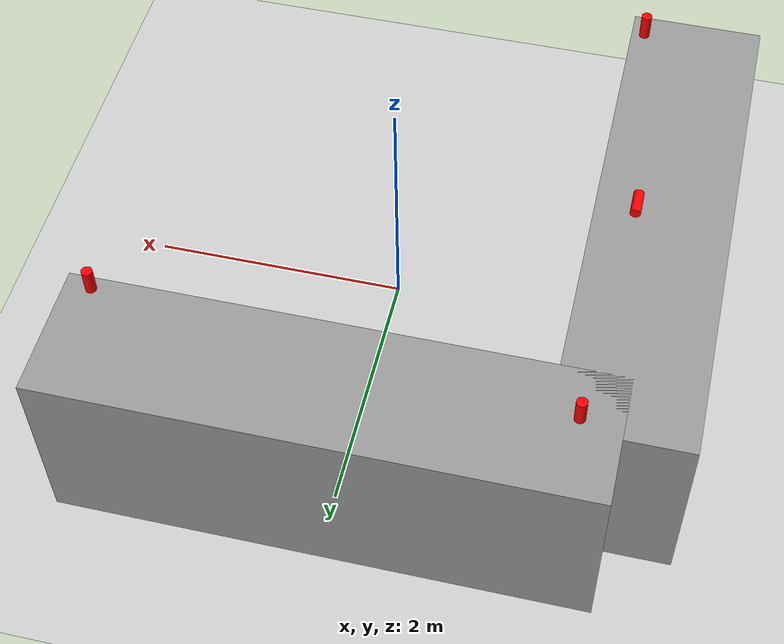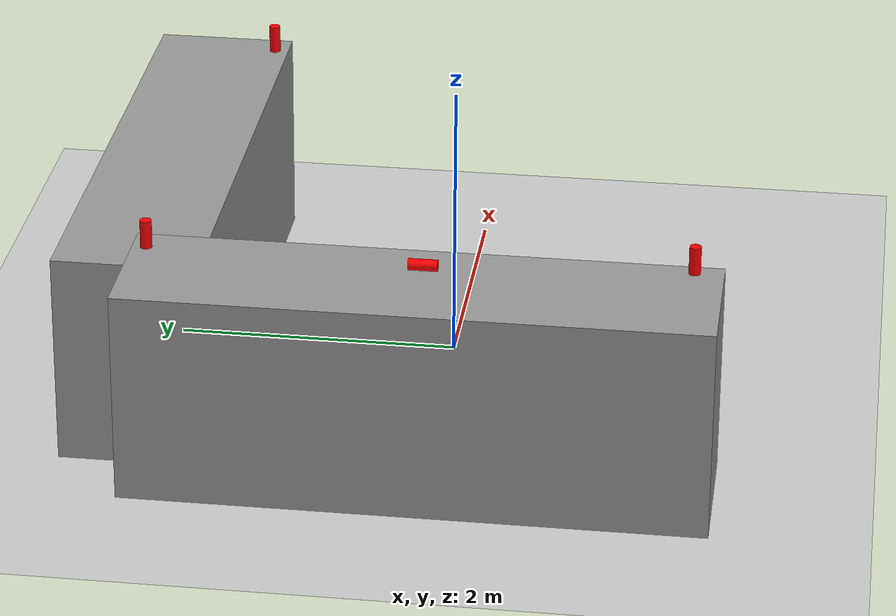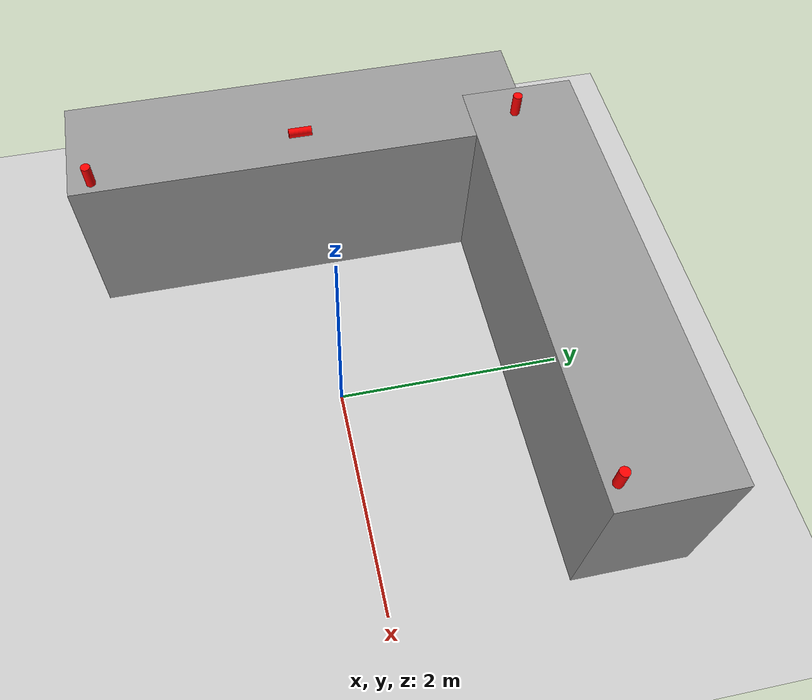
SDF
<?xml version="1.0" ?>
<sdf version="1.5">
  <world name="default">
    <!-- A global light source -->
    <include>
      <uri>model://sun</uri>
    </include>
    <!-- A ground plane -->
    <include>
      <uri>model://ground_plane</uri>
    </include>
    <include>
      <uri>model://asphalt_plane</uri>
      <pose frame=''>0 0 -0.055 0 0 0</pose>
    </include>

<!-- Shelf 1 with two objects: one top graspable, other side graspable -->
   <model name='unit_box'>
    <static>1</static>
      <pose frame=''>-2.0 0.0 0.75 0 0 0</pose>
      <link name='link'>
        <inertial>
          <mass>1</mass>
          <inertia>
            <ixx>0.166667</ixx>
            <ixy>0</ixy>
            <ixz>0</ixz>
            <iyy>0.166667</iyy>
            <iyz>0</iyz>
            <izz>0.166667</izz>
          </inertia>
          <pose frame=''>0 0 0 0 0 0</pose>
        </inertial>
        <collision name='collision'>
          <geometry>
            <box>
              <size>1 4 1.5</size>
            </box>
          </geometry>
          <max_contacts>10</max_contacts>
          <surface>
            <contact>
              <ode/>
            </contact>
            <bounce/>
            <friction>
              <torsional>
                <ode/>
              </torsional>
              <ode/>
            </friction>
          </surface>
        </collision>
        <visual name='visual'>
          <geometry>
            <box>
              <size>1 4 1.5</size>
            </box>
          </geometry>
          <material>
            <script>
              <name>Gazebo/Grey</name>
              <uri>file://media/materials/scripts/gazebo.material</uri>
            </script>
          </material>
        </visual>
        <self_collide>0</self_collide>
        <enable_wind>0</enable_wind>
        <kinematic>0</kinematic>
      </link>
    </model>

<!-- First cylinder on Shelf 1: Side graspable -->
   <model name='cylinder_red_shelf'>
     <link name='link_0'>
       <pose frame=''>-1.6 -1.8 1.6 0 0 0</pose>
       <inertial>
         <mass>1</mass>
         <inertia>
           <ixx>0.145833</ixx>
           <ixy>0</ixy>
           <ixz>0</ixz>
           <iyy>0.145833</iyy>
           <iyz>0</iyz>
           <izz>0.125</izz>
         </inertia>
         <pose frame=''>0 0 0 0 -0 0</pose>
       </inertial>
       <gravity>1</gravity>
       <self_collide>0</self_collide>
       <kinematic>0</kinematic>
       <visual name='visual'>
         <pose frame=''>0 0 0 0 -0 0</pose>
         <geometry>
           <cylinder>
             <radius>0.04</radius>
             <length>0.2</length>
           </cylinder>
         </geometry>
         <material>
           <lighting>1</lighting>
           <script>
             <uri>file://media/materials/scripts/gazebo.material</uri>
             <name>Gazebo/Grey</name>
           </script>
           <ambient>1 0 0 1</ambient>
           <diffuse>1 0 0 1</diffuse>
           <specular>0 0 0 1</specular>
           <emissive>0 0 0 1</emissive>
           <shader type='vertex'>
             <normal_map>__default__</normal_map>
           </shader>
         </material>
         <cast_shadows>1</cast_shadows>
         <transparency>0</transparency>
       </visual>
       <collision name='collision'>
         <laser_retro>0</laser_retro>
         <max_contacts>10</max_contacts>
         <pose frame=''>0 0 0 0 -0 0</pose>
         <geometry>
           <cylinder>
             <radius>0.04</radius>
             <length>0.2</length>
           </cylinder>
         </geometry>
         <surface>
           <friction>
             <ode>
               <mu>1</mu>
               <mu2>1</mu2>
               <fdir1>0 0 0</fdir1>
               <slip1>0</slip1>
               <slip2>0</slip2>
             </ode>
             <torsional>
               <coefficient>1</coefficient>
               <patch_radius>0</patch_radius>
               <surface_radius>0</surface_radius>
               <use_patch_radius>1</use_patch_radius>
               <ode>
                 <slip>0</slip>
               </ode>
             </torsional>
           </friction>
           <bounce>
             <restitution_coefficient>0</restitution_coefficient>
             <threshold>1e+06</threshold>
           </bounce>
           <contact>
             <collide_without_contact>0</collide_without_contact>
             <collide_without_contact_bitmask>1</collide_without_contact_bitmask>
             <collide_bitmask>1</collide_bitmask>
             <ode>
               <soft_cfm>0</soft_cfm>
               <soft_erp>0.2</soft_erp>
               <kp>1e+13</kp>
               <kd>1</kd>
               <max_vel>0.01</max_vel>
               <min_depth>0</min_depth>
             </ode>
             <bullet>
               <split_impulse>1</split_impulse>
               <split_impulse_penetration_threshold>-0.01</split_impulse_penetration_threshold>
               <soft_cfm>0</soft_cfm>
               <soft_erp>0.2</soft_erp>
               <kp>1e+13</kp>
               <kd>1</kd>
             </bullet>
           </contact>
         </surface>
       </collision>
     </link>
     <static>1</static>
     <allow_auto_disable>1</allow_auto_disable>
   </model>

<!-- Second cylinder on Shelf 1: Top graspable -->
   <model name='cylinder_red_shelf'>
     <link name='link_0'>
       <pose frame=''>-1.8 0 1.54 1.57079632679 0 0</pose>
       <inertial>
         <mass>1</mass>
         <inertia>
           <ixx>0.145833</ixx>
           <ixy>0</ixy>
           <ixz>0</ixz>
           <iyy>0.145833</iyy>
           <iyz>0</iyz>
           <izz>0.125</izz>
         </inertia>
         <pose frame=''>0 0 0 0 -0 0</pose>
       </inertial>
       <gravity>1</gravity>
       <self_collide>0</self_collide>
       <kinematic>0</kinematic>
       <visual name='visual'>
         <pose frame=''>0 0 0 0 -0 0</pose>
         <geometry>
           <cylinder>
             <radius>0.04</radius>
             <length>0.2</length>
           </cylinder>
         </geometry>
         <material>
           <lighting>1</lighting>
           <script>
             <uri>file://media/materials/scripts/gazebo.material</uri>
             <name>Gazebo/Grey</name>
           </script>
           <ambient>1 0 0 1</ambient>
           <diffuse>1 0 0 1</diffuse>
           <specular>0 0 0 1</specular>
           <emissive>0 0 0 1</emissive>
           <shader type='vertex'>
             <normal_map>__default__</normal_map>
           </shader>
         </material>
         <cast_shadows>1</cast_shadows>
         <transparency>0</transparency>
       </visual>
       <collision name='collision'>
         <laser_retro>0</laser_retro>
         <max_contacts>10</max_contacts>
         <pose frame=''>0 0 0 0 -0 0</pose>
         <geometry>
           <cylinder>
             <radius>0.04</radius>
             <length>0.2</length>
           </cylinder>
         </geometry>
         <surface>
           <friction>
             <ode>
               <mu>1</mu>
               <mu2>1</mu2>
               <fdir1>0 0 0</fdir1>
               <slip1>0</slip1>
               <slip2>0</slip2>
             </ode>
             <torsional>
               <coefficient>1</coefficient>
               <patch_radius>0</patch_radius>
               <surface_radius>0</surface_radius>
               <use_patch_radius>1</use_patch_radius>
               <ode>
                 <slip>0</slip>
               </ode>
             </torsional>
           </friction>
           <bounce>
             <restitution_coefficient>0</restitution_coefficient>
             <threshold>1e+06</threshold>
           </bounce>
           <contact>
             <collide_without_contact>0</collide_without_contact>
             <collide_without_contact_bitmask>1</collide_without_contact_bitmask>
             <collide_bitmask>1</collide_bitmask>
             <ode>
               <soft_cfm>0</soft_cfm>
               <soft_erp>0.2</soft_erp>
               <kp>1e+13</kp>
               <kd>1</kd>
               <max_vel>0.01</max_vel>
               <min_depth>0</min_depth>
             </ode>
             <bullet>
               <split_impulse>1</split_impulse>
               <split_impulse_penetration_threshold>-0.01</split_impulse_penetration_threshold>
               <soft_cfm>0</soft_cfm>
               <soft_erp>0.2</soft_erp>
               <kp>1e+13</kp>
               <kd>1</kd>
             </bullet>
           </contact>
         </surface>
       </collision>
     </link>
     <static>1</static>
     <allow_auto_disable>1</allow_auto_disable>
   </model>

<!-- Shelf 2 with two objects: one side graspable, one not graspable -->
   <model name='unit_box'>
    <static>1</static>
      <pose frame=''>0 2.0 0.75 0 0 1.57079632679</pose>
      <link name='link'>
        <inertial>
          <mass>1</mass>
          <inertia>
            <ixx>0.166667</ixx>
            <ixy>0</ixy>
            <ixz>0</ixz>
            <iyy>0.166667</iyy>
            <iyz>0</iyz>
            <izz>0.166667</izz>
          </inertia>
          <pose frame=''>0 0 0 0 0 0</pose>
        </inertial>
        <collision name='collision'>
          <geometry>
            <box>
              <size>1 4 1.5</size>
            </box>
          </geometry>
          <max_contacts>10</max_contacts>
          <surface>
            <contact>
              <ode/>
            </contact>
            <bounce/>
            <friction>
              <torsional>
                <ode/>
              </torsional>
              <ode/>
            </friction>
          </surface>
        </collision>
        <visual name='visual'>
          <geometry>
            <box>
              <size>1 4 1.5</size>
            </box>
          </geometry>
          <material>
            <script>
              <name>Gazebo/Grey</name>
              <uri>file://media/materials/scripts/gazebo.material</uri>
            </script>
          </material>
        </visual>
        <self_collide>0</self_collide>
        <enable_wind>0</enable_wind>
        <kinematic>0</kinematic>
      </link>
    </model>

<!-- First cylinder on Shelf 2: Side graspable -->
   <model name='cylinder_red_shelf'>
     <link name='link_0'>
       <pose frame=''>1.8 1.6 1.6 0 0 0</pose>
       <inertial>
         <mass>1</mass>
         <inertia>
           <ixx>0.145833</ixx>
           <ixy>0</ixy>
           <ixz>0</ixz>
           <iyy>0.145833</iyy>
           <iyz>0</iyz>
           <izz>0.125</izz>
         </inertia>
         <pose frame=''>0 0 0 0 -0 0</pose>
       </inertial>
       <gravity>1</gravity>
       <self_collide>0</self_collide>
       <kinematic>0</kinematic>
       <visual name='visual'>
         <pose frame=''>0 0 0 0 -0 0</pose>
         <geometry>
           <cylinder>
             <radius>0.04</radius>
             <length>0.2</length>
           </cylinder>
         </geometry>
         <material>
           <lighting>1</lighting>
           <script>
             <uri>file://media/materials/scripts/gazebo.material</uri>
             <name>Gazebo/Grey</name>
           </script>
           <ambient>1 0 0 1</ambient>
           <diffuse>1 0 0 1</diffuse>
           <specular>0 0 0 1</specular>
           <emissive>0 0 0 1</emissive>
           <shader type='vertex'>
             <normal_map>__default__</normal_map>
           </shader>
         </material>
         <cast_shadows>1</cast_shadows>
         <transparency>0</transparency>
       </visual>
       <collision name='collision'>
         <laser_retro>0</laser_retro>
         <max_contacts>10</max_contacts>
         <pose frame=''>0 0 0 0 -0 0</pose>
         <geometry>
           <cylinder>
             <radius>0.04</radius>
             <length>0.2</length>
           </cylinder>
         </geometry>
         <surface>
           <friction>
             <ode>
               <mu>1</mu>
               <mu2>1</mu2>
               <fdir1>0 0 0</fdir1>
               <slip1>0</slip1>
               <slip2>0</slip2>
             </ode>
             <torsional>
               <coefficient>1</coefficient>
               <patch_radius>0</patch_radius>
               <surface_radius>0</surface_radius>
               <use_patch_radius>1</use_patch_radius>
               <ode>
                 <slip>0</slip>
               </ode>
             </torsional>
           </friction>
           <bounce>
             <restitution_coefficient>0</restitution_coefficient>
             <threshold>1e+06</threshold>
           </bounce>
           <contact>
             <collide_without_contact>0</collide_without_contact>
             <collide_without_contact_bitmask>1</collide_without_contact_bitmask>
             <collide_bitmask>1</collide_bitmask>
             <ode>
               <soft_cfm>0</soft_cfm>
               <soft_erp>0.2</soft_erp>
               <kp>1e+13</kp>
               <kd>1</kd>
               <max_vel>0.01</max_vel>
               <min_depth>0</min_depth>
             </ode>
             <bullet>
               <split_impulse>1</split_impulse>
               <split_impulse_penetration_threshold>-0.01</split_impulse_penetration_threshold>
               <soft_cfm>0</soft_cfm>
               <soft_erp>0.2</soft_erp>
               <kp>1e+13</kp>
               <kd>1</kd>
             </bullet>
           </contact>
         </surface>
       </collision>
     </link>
     <static>1</static>
     <allow_auto_disable>1</allow_auto_disable>
   </model>

<!-- Second cylinder on Shelf 2: Not graspable -->
   <model name='cylinder_red_shelf'>
     <link name='link_0'>
       <pose frame=''>-1.7 1.9 1.6 0 0 0</pose>
       <inertial>
         <mass>1</mass>
         <inertia>
           <ixx>0.145833</ixx>
           <ixy>0</ixy>
           <ixz>0</ixz>
           <iyy>0.145833</iyy>
           <iyz>0</iyz>
           <izz>0.125</izz>
         </inertia>
         <pose frame=''>0 0 0 0 -0 0</pose>
       </inertial>
       <gravity>1</gravity>
       <self_collide>0</self_collide>
       <kinematic>0</kinematic>
       <visual name='visual'>
         <pose frame=''>0 0 0 0 -0 0</pose>
         <geometry>
           <cylinder>
             <radius>0.04</radius>
             <length>0.2</length>
           </cylinder>
         </geometry>
         <material>
           <lighting>1</lighting>
           <script>
             <uri>file://media/materials/scripts/gazebo.material</uri>
             <name>Gazebo/Grey</name>
           </script>
           <ambient>1 0 0 1</ambient>
           <diffuse>1 0 0 1</diffuse>
           <specular>0 0 0 1</specular>
           <emissive>0 0 0 1</emissive>
           <shader type='vertex'>
             <normal_map>__default__</normal_map>
           </shader>
         </material>
         <cast_shadows>1</cast_shadows>
         <transparency>0</transparency>
       </visual>
       <collision name='collision'>
         <laser_retro>0</laser_retro>
         <max_contacts>10</max_contacts>
         <pose frame=''>0 0 0 0 -0 0</pose>
         <geometry>
           <cylinder>
             <radius>0.04</radius>
             <length>0.2</length>
           </cylinder>
         </geometry>
         <surface>
           <friction>
             <ode>
               <mu>1</mu>
               <mu2>1</mu2>
               <fdir1>0 0 0</fdir1>
               <slip1>0</slip1>
               <slip2>0</slip2>
             </ode>
             <torsional>
               <coefficient>1</coefficient>
               <patch_radius>0</patch_radius>
               <surface_radius>0</surface_radius>
               <use_patch_radius>1</use_patch_radius>
               <ode>
                 <slip>0</slip>
               </ode>
             </torsional>
           </friction>
           <bounce>
             <restitution_coefficient>0</restitution_coefficient>
             <threshold>1e+06</threshold>
           </bounce>
           <contact>
             <collide_without_contact>0</collide_without_contact>
             <collide_without_contact_bitmask>1</collide_without_contact_bitmask>
             <collide_bitmask>1</collide_bitmask>
             <ode>
               <soft_cfm>0</soft_cfm>
               <soft_erp>0.2</soft_erp>
               <kp>1e+13</kp>
               <kd>1</kd>
               <max_vel>0.01</max_vel>
               <min_depth>0</min_depth>
             </ode>
             <bullet>
               <split_impulse>1</split_impulse>
               <split_impulse_penetration_threshold>-0.01</split_impulse_penetration_threshold>
               <soft_cfm>0</soft_cfm>
               <soft_erp>0.2</soft_erp>
               <kp>1e+13</kp>
               <kd>1</kd>
             </bullet>
           </contact>
         </surface>
       </collision>
     </link>
     <static>1</static>
     <allow_auto_disable>1</allow_auto_disable>
   </model>

    <!-- Only one ROS interface plugin is required per world, as any other plugin can connect a Gazebo
         topic to a ROS topic (or vise versa). -->
    <plugin name="ros_interface_plugin" filename="librotors_gazebo_ros_interface_plugin.so"/>

    <physics name='default_physics' default='0' type='ode'>
      <gravity>0 0 -9.8066</gravity>
      <ode>
        <solver>
          <type>quick</type>
          <iters>10</iters>
          <sor>1.3</sor>
          <use_dynamic_moi_rescaling>0</use_dynamic_moi_rescaling>
        </solver>
        <constraints>
          <cfm>0</cfm>
          <erp>0.2</erp>
          <contact_max_correcting_vel>100</contact_max_correcting_vel>
          <contact_surface_layer>0.001</contact_surface_layer>
        </constraints>
      </ode>
      <max_step_size>0.002</max_step_size>
      <real_time_factor>1</real_time_factor>
      <real_time_update_rate>500</real_time_update_rate>
      <magnetic_field>6e-06 2.3e-05 -4.2e-05</magnetic_field>
    </physics>
  </world>
</sdf>
